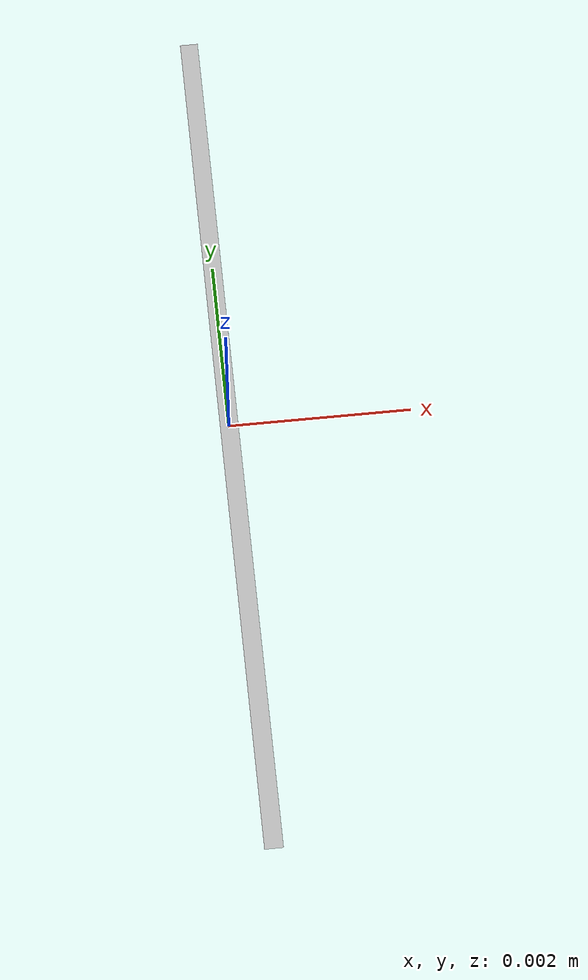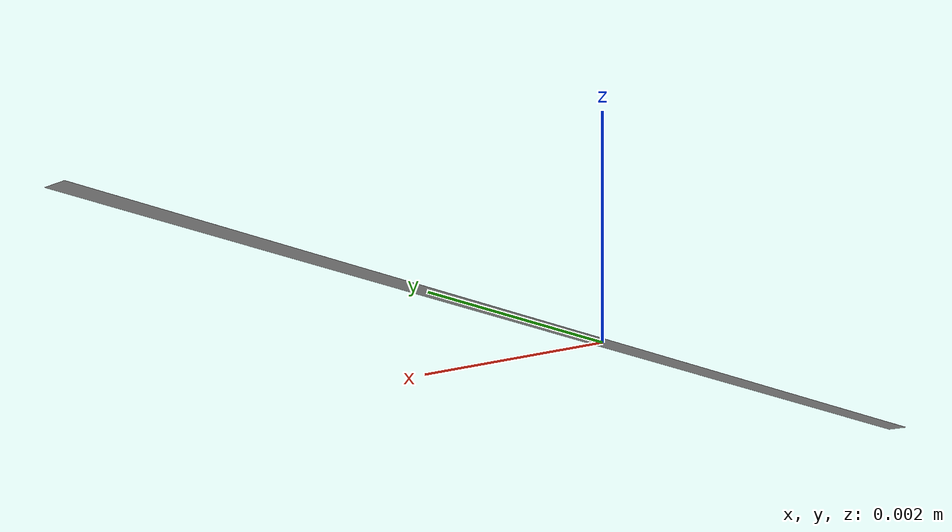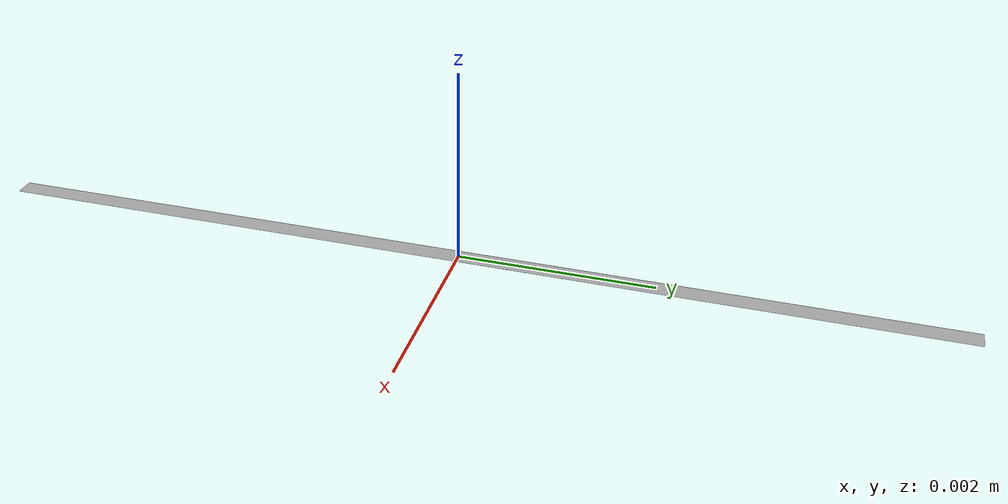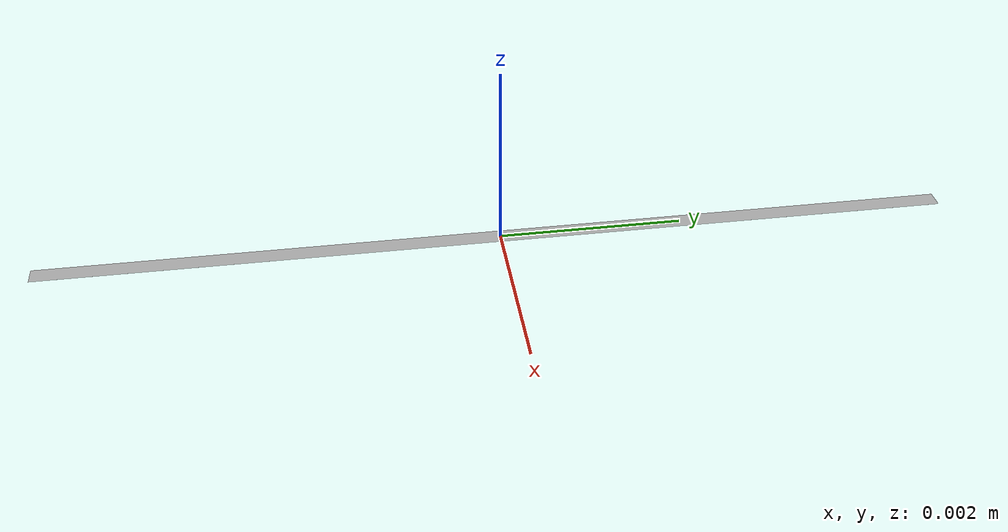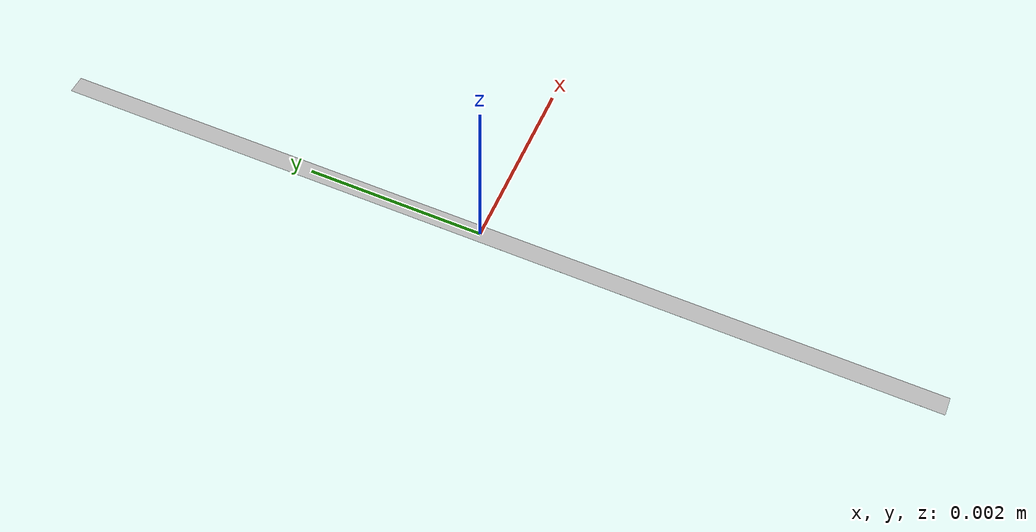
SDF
<?xml version="1.0" ?><sdf version="1.5">
  <model name="apriltag2">
    <static>true</static>
    <link name="link">
      <visual name="visual">
        <geometry>
          <mesh>
            <uri>model://apriltag2/meshes/apriltag2.dae</uri>
          <scale>0.02 0.02 0.0000001</scale></mesh>
        </geometry>
      </visual>
    </link>
  </model>
</sdf>
